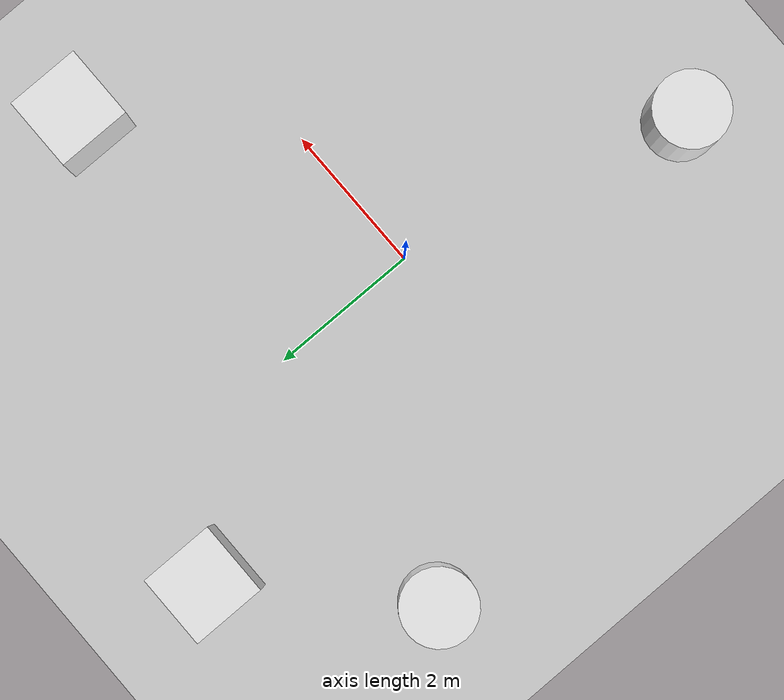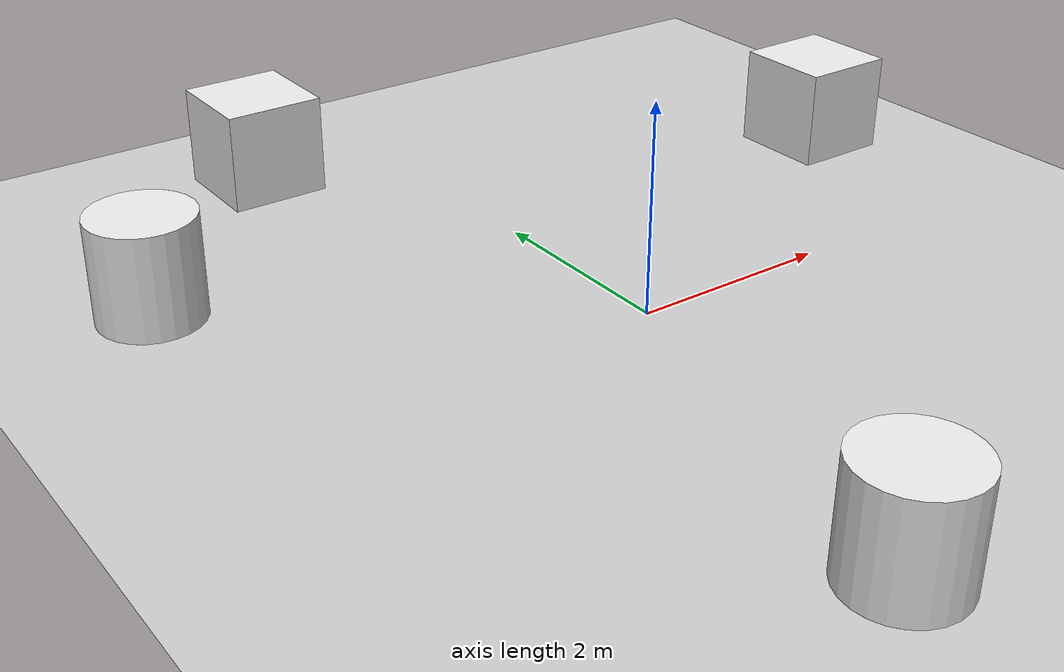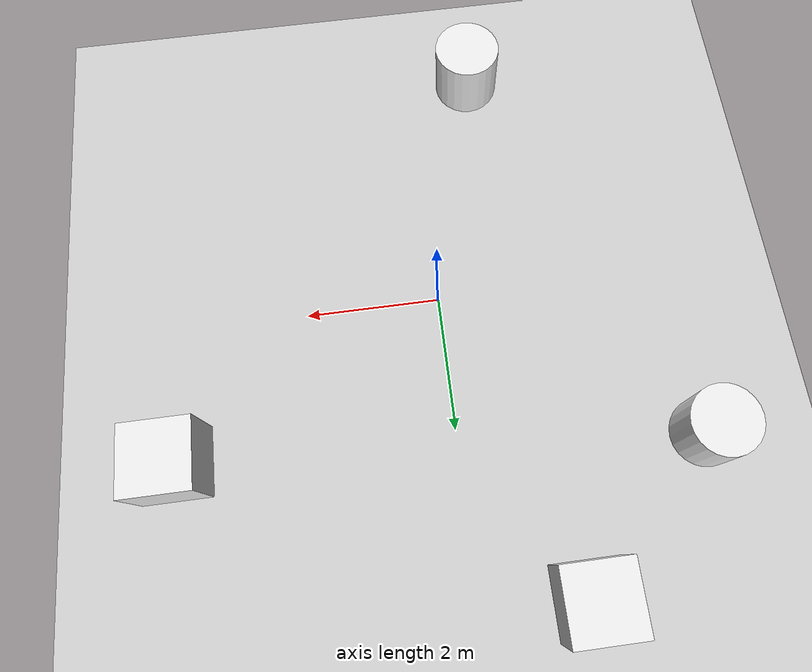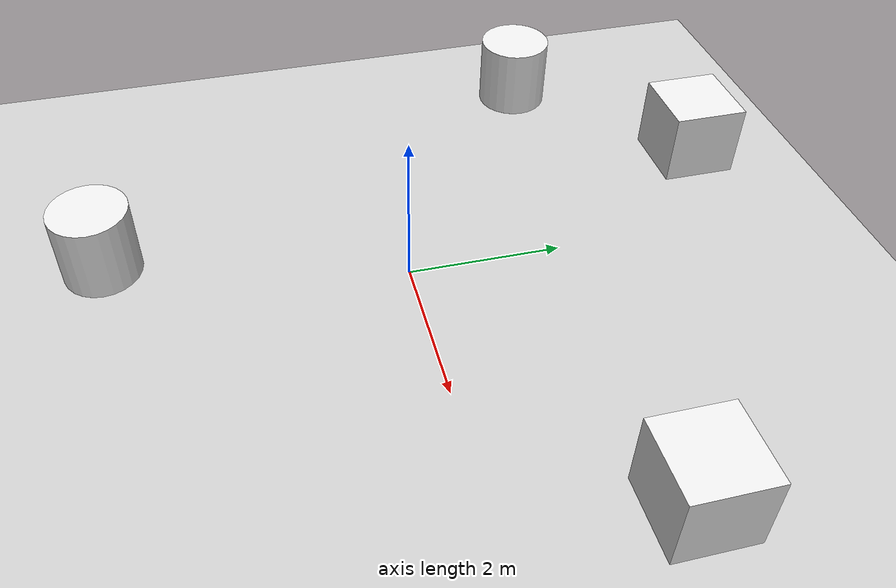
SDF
<sdf version="1.5">
 <world name="default">
  <include><uri>model://sun</uri></include>
  <include><uri>model://ground_plane</uri></include>
  <model name="unit_box_0">
   <pose>-1.5 4.5 0.5 0 -0 0</pose>
   <link name="link">
    <inertial>
     <mass>1</mass>
     <inertia>
      <ixx>0.166667</ixx>
      <ixy>0</ixy>
      <ixz>0</ixz>
      <iyy>0.166667</iyy>
      <iyz>0</iyz>
      <izz>0.166667</izz>
     </inertia>
    </inertial>
    <collision name="collision"><geometry><box><size>1 1 1</size></box></geometry></collision>
    <visual name="visual">
     <geometry><box><size>1 1 1</size></box></geometry>
     <material>
      <script><name>Gazebo/White</name><uri>file://media/materials/scripts/gazebo.material</uri></script>
     </material>
    </visual>
   </link>
  </model>
  <model name="unit_box_1">
   <pose>4 2 0.5 0 -0 0</pose>
   <link name="link">
    <inertial>
     <mass>1</mass>
     <inertia>
      <ixx>0.166667</ixx>
      <ixy>0</ixy>
      <ixz>0</ixz>
      <iyy>0.166667</iyy>
      <iyz>0</iyz>
      <izz>0.166667</izz>
     </inertia>
    </inertial>
    <collision name="collision"><geometry><box><size>1 1 1</size></box></geometry></collision>
    <visual name="visual">
     <geometry><box><size>1 1 1</size></box></geometry>
     <material>
      <script><name>Gazebo/White</name><uri>file://media/materials/scripts/gazebo.material</uri></script>
     </material>
    </visual>
   </link>
  </model>
  <model name="unit_cylinder_0">
   <pose>-3.55976 2.5 0.5 0 -0 0</pose>
   <link name="link">
    <inertial>
     <mass>1</mass>
     <inertia><ixx>0.145833</ixx><ixy>0</ixy><ixz>0</ixz><iyy>0.145833</iyy><iyz>0</iyz><izz>0.125</izz></inertia>
    </inertial>
    <collision name="collision">
     <geometry><cylinder><radius>0.5</radius><length>1</length></cylinder></geometry>
    </collision>
    <visual name="visual">
     <geometry><cylinder><radius>0.5</radius><length>1</length></cylinder></geometry>
     <material>
      <script><name>Gazebo/White</name><uri>file://media/materials/scripts/gazebo.material</uri></script>
     </material>
    </visual>
   </link>
  </model>
  <model name="unit_cylinder_1">
   <pose>-0.956969 -3.79231 0.5 0 -0 0</pose>
   <link name="link">
    <inertial>
     <mass>1</mass>
     <inertia><ixx>0.145833</ixx><ixy>0</ixy><ixz>0</ixz><iyy>0.145833</iyy><iyz>0</iyz><izz>0.125</izz></inertia>
    </inertial>
    <collision name="collision">
     <geometry><cylinder><radius>0.5</radius><length>1</length></cylinder></geometry>
    </collision>
    <visual name="visual">
     <geometry><cylinder><radius>0.5</radius><length>1</length></cylinder></geometry>
     <material>
      <script><name>Gazebo/White</name><uri>file://media/materials/scripts/gazebo.material</uri></script>
     </material>
    </visual>
   </link>
  </model>
 </world>
</sdf>
